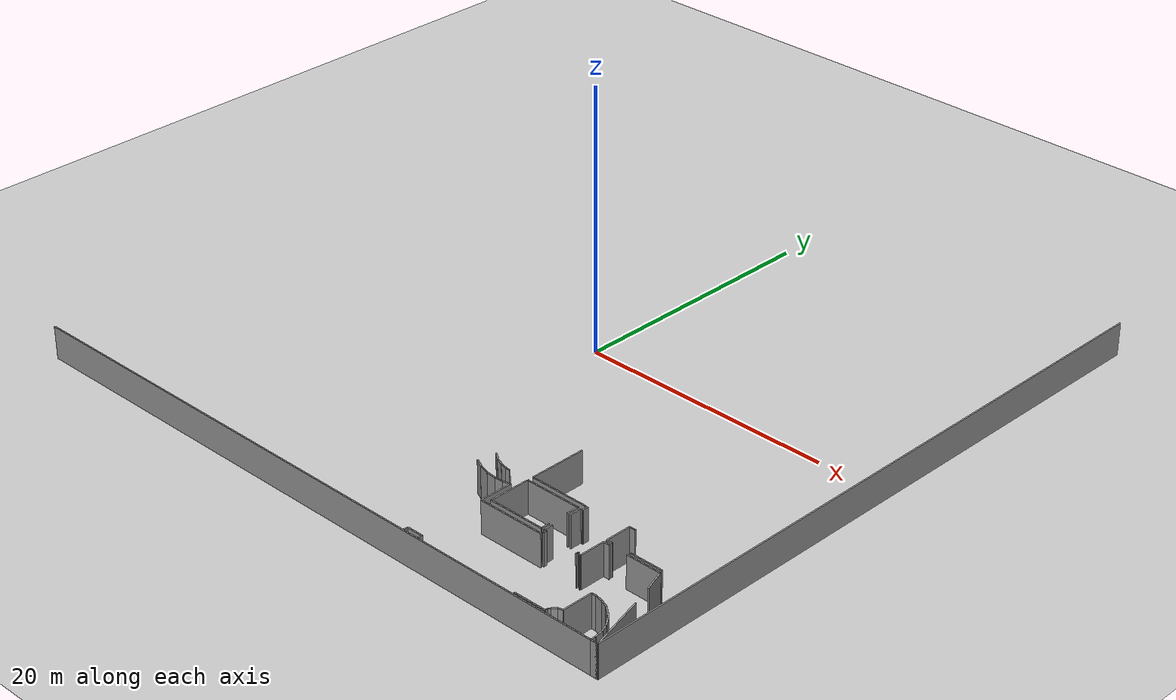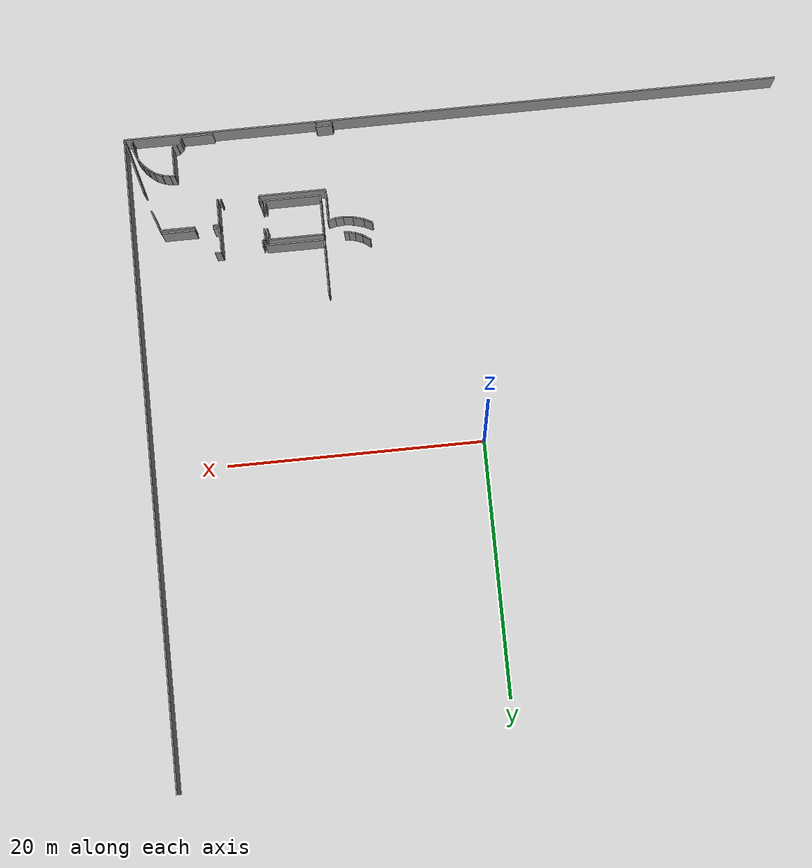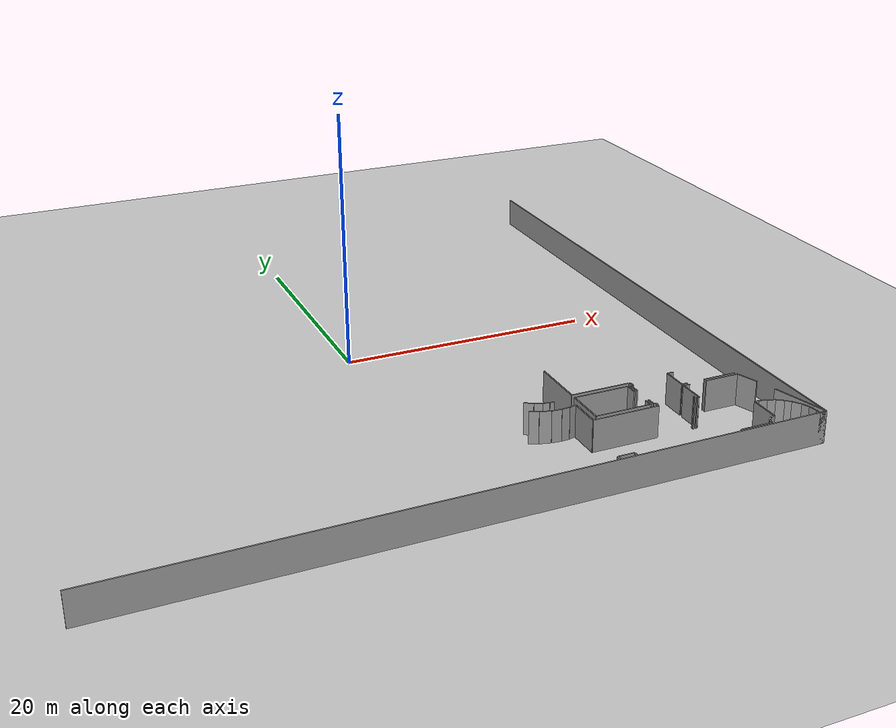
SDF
<sdf version="1.6">
 <world name="default">
  <model name="ground_plane">
   <static>1</static>
   <link name="link">
    <collision name="collision">
     <geometry><plane><normal>0 0 1</normal><size>100 100</size></plane></geometry>
     <surface><friction><ode><mu>100</mu><mu2>50</mu2></ode></friction></surface>
    </collision>
    <visual name="visual">
     <cast_shadows>0</cast_shadows>
     <geometry><plane><normal>0 0 1</normal><size>100 100</size></plane></geometry>
     <material>
      <script><uri>file://media/materials/scripts/gazebo.material</uri><name>Gazebo/Grey</name></script>
     </material>
    </visual>
   </link>
  </model>
  <model name="50041194">
   <static>1</static>
   <link name="Wall_52">
    <collision name="Wall_52_Collision">
     <geometry><box><size>0.710754724174 0.1 2.5</size></box></geometry>
     <pose>0.355377362087 0 1.25 0 0 0</pose>
    </collision>
    <visual name="Wall_52_Visual">
     <pose>0.355377362087 0 1.25 0 0 0</pose>
     <geometry><box><size>0.710754724174 0.1 2.5</size></box></geometry>
     <material>
      <script><uri>file://media/materials/scripts/gazebo.material</uri><name>Gazebo/Grey</name></script>
      <ambient>1 1 1 1</ambient>
     </material>
    </visual>
    <pose>41.0639081979 -44.9492572213 0 0 0 1.57079632679</pose>
   </link>
   <link name="Wall_53">
    <collision name="Wall_53_Collision">
     <geometry><box><size>0.893240650138 0.1 2.5</size></box></geometry>
     <pose>0.446620325069 0 1.25 0 0 0</pose>
    </collision>
    <visual name="Wall_53_Visual">
     <pose>0.446620325069 0 1.25 0 0 0</pose>
     <geometry><box><size>0.893240650138 0.1 2.5</size></box></geometry>
     <material>
      <script><uri>file://media/materials/scripts/gazebo.material</uri><name>Gazebo/Grey</name></script>
      <ambient>1 1 1 1</ambient>
     </material>
    </visual>
    <pose>41.0639081979 -42.6918199032 0 0 0 1.57079632679</pose>
   </link>
   <link name="Wall_54">
    <collision name="Wall_54_Collision">
     <geometry><box><size>0.176513197189 0.1 2.5</size></box></geometry>
     <pose>0.0882565985945 0 1.25 0 0 0</pose>
    </collision>
    <visual name="Wall_54_Visual">
     <pose>0.0882565985945 0 1.25 0 0 0</pose>
     <geometry><box><size>0.176513197189 0.1 2.5</size></box></geometry>
     <material>
      <script><uri>file://media/materials/scripts/gazebo.material</uri><name>Gazebo/Grey</name></script>
      <ambient>1 1 1 1</ambient>
     </material>
    </visual>
    <pose>41.0639081979 -41.798579253 0 0 0 0.0</pose>
   </link>
   <link name="Wall_55">
    <collision name="Wall_55_Collision">
     <geometry><box><size>0.45036916547 0.1 2.5</size></box></geometry>
     <pose>0.225184582735 0 1.25 0 0 0</pose>
    </collision>
    <visual name="Wall_55_Visual">
     <pose>0.225184582735 0 1.25 0 0 0</pose>
     <geometry><box><size>0.45036916547 0.1 2.5</size></box></geometry>
     <material>
      <script><uri>file://media/materials/scripts/gazebo.material</uri><name>Gazebo/Grey</name></script>
      <ambient>1 1 1 1</ambient>
     </material>
    </visual>
    <pose>41.2404213951 -41.798579253 0 0 0 1.57079632679</pose>
   </link>
   <link name="Wall_57">
    <collision name="Wall_57_Collision">
     <geometry><box><size>0.0900992489611 0.1 2.5</size></box></geometry>
     <pose>0.0450496244806 0 1.25 0 0 0</pose>
    </collision>
    <visual name="Wall_57_Visual">
     <pose>0.0450496244806 0 1.25 0 0 0</pose>
     <geometry><box><size>0.0900992489611 0.1 2.5</size></box></geometry>
     <material>
      <script><uri>file://media/materials/scripts/gazebo.material</uri><name>Gazebo/Grey</name></script>
      <ambient>1 1 1 1</ambient>
     </material>
    </visual>
    <pose>44.263384631 -45.1992222745 0 0 0 3.14159265359</pose>
   </link>
   <link name="Wall_58">
    <collision name="Wall_58_Collision">
     <geometry><box><size>0.251617084546 0.1 2.5</size></box></geometry>
     <pose>0.125808542273 0 1.25 0 0 0</pose>
    </collision>
    <visual name="Wall_58_Visual">
     <pose>0.125808542273 0 1.25 0 0 0</pose>
     <geometry><box><size>0.251617084546 0.1 2.5</size></box></geometry>
     <material>
      <script><uri>file://media/materials/scripts/gazebo.material</uri><name>Gazebo/Grey</name></script>
      <ambient>1 1 1 1</ambient>
     </material>
    </visual>
    <pose>41.2537647253 -45.1992222745 0 0 0 1.57079632679</pose>
   </link>
   <link name="Wall_59">
    <collision name="Wall_59_Collision">
     <geometry><box><size>0.189863714847 0.1 2.5</size></box></geometry>
     <pose>0.0949318574234 0 1.25 0 0 0</pose>
    </collision>
    <visual name="Wall_59_Visual">
     <pose>0.0949318574234 0 1.25 0 0 0</pose>
     <geometry><box><size>0.189863714847 0.1 2.5</size></box></geometry>
     <material>
      <script><uri>file://media/materials/scripts/gazebo.material</uri><name>Gazebo/Grey</name></script>
      <ambient>1 1 1 1</ambient>
     </material>
    </visual>
    <pose>41.2537647253 -44.9476051899 0 0 0 -3.13289140064</pose>
   </link>
   <link name="Wall_60">
    <collision name="Wall_60_Collision">
     <geometry><box><size>0.0988677231196 0.1 2.5</size></box></geometry>
     <pose>0.0494338615598 0 1.25 0 0 0</pose>
    </collision>
    <visual name="Wall_60_Visual">
     <pose>0.0494338615598 0 1.25 0 0 0</pose>
     <geometry><box><size>0.0988677231196 0.1 2.5</size></box></geometry>
     <material>
      <script><uri>file://media/materials/scripts/gazebo.material</uri><name>Gazebo/Grey</name></script>
      <ambient>1 1 1 1</ambient>
     </material>
    </visual>
    <pose>44.4213442452 -45.3412969717 0 0 0 0.0</pose>
   </link>
   <link name="Wall_61">
    <collision name="Wall_61_Collision">
     <geometry><box><size>1.99260398267 0.1 2.5</size></box></geometry>
     <pose>0.996301991333 0 1.25 0 0 0</pose>
    </collision>
    <visual name="Wall_61_Visual">
     <pose>0.996301991333 0 1.25 0 0 0</pose>
     <geometry><box><size>1.99260398267 0.1 2.5</size></box></geometry>
     <material>
      <script><uri>file://media/materials/scripts/gazebo.material</uri><name>Gazebo/Grey</name></script>
      <ambient>1 1 1 1</ambient>
     </material>
    </visual>
    <pose>44.5202119683 -45.3412969717 0 0 0 1.57079632679</pose>
   </link>
   <link name="Wall_62">
    <collision name="Wall_62_Collision">
     <geometry><box><size>0.498150995667 0.1 2.5</size></box></geometry>
     <pose>0.249075497833 0 1.25 0 0 0</pose>
    </collision>
    <visual name="Wall_62_Visual">
     <pose>0.249075497833 0 1.25 0 0 0</pose>
     <geometry><box><size>0.498150995667 0.1 2.5</size></box></geometry>
     <material>
      <script><uri>file://media/materials/scripts/gazebo.material</uri><name>Gazebo/Grey</name></script>
      <ambient>1 1 1 1</ambient>
     </material>
    </visual>
    <pose>44.5202119683 -43.348692989 0 0 0 0.0</pose>
   </link>
   <link name="Wall_63">
    <collision name="Wall_63_Collision">
     <geometry><box><size>2.70412118285 0.1 2.5</size></box></geometry>
     <pose>1.35206059143 0 1.25 0 0 0</pose>
    </collision>
    <visual name="Wall_63_Visual">
     <pose>1.35206059143 0 1.25 0 0 0</pose>
     <geometry><box><size>2.70412118285 0.1 2.5</size></box></geometry>
     <material>
      <script><uri>file://media/materials/scripts/gazebo.material</uri><name>Gazebo/Grey</name></script>
      <ambient>1 1 1 1</ambient>
     </material>
    </visual>
    <pose>46.4199209567 -43.348692989 0 0 0 0.0</pose>
   </link>
   <link name="Wall_64">
    <collision name="Wall_64_Collision">
     <geometry><box><size>1.71216550646 0.1 2.5</size></box></geometry>
     <pose>0.856082753228 0 1.25 0 0 0</pose>
    </collision>
    <visual name="Wall_64_Visual">
     <pose>0.856082753228 0 1.25 0 0 0</pose>
     <geometry><box><size>1.71216550646 0.1 2.5</size></box></geometry>
     <material>
      <script><uri>file://media/materials/scripts/gazebo.material</uri><name>Gazebo/Grey</name></script>
      <ambient>1 1 1 1</ambient>
     </material>
    </visual>
    <pose>49.1240421395 -43.348692989 0 0 0 -1.23371869404</pose>
   </link>
   <link name="Wall_65">
    <collision name="Wall_65_Collision">
     <geometry><box><size>4.51648503883 0.1 2.5</size></box></geometry>
     <pose>2.25824251942 0 1.25 0 0 0</pose>
    </collision>
    <visual name="Wall_65_Visual">
     <pose>2.25824251942 0 1.25 0 0 0</pose>
     <geometry><box><size>4.51648503883 0.1 2.5</size></box></geometry>
     <material>
      <script><uri>file://media/materials/scripts/gazebo.material</uri><name>Gazebo/Grey</name></script>
      <ambient>1 1 1 1</ambient>
     </material>
    </visual>
    <pose>50.1624073909 -46.5172891436 0 0 0 -1.30429256626</pose>
   </link>
   <link name="Wall_66">
    <collision name="Wall_66_Collision">
     <geometry><box><size>0.57452567638 0.1 2.5</size></box></geometry>
     <pose>0.28726283819 0 1.25 0 0 0</pose>
    </collision>
    <visual name="Wall_66_Visual">
     <pose>0.28726283819 0 1.25 0 0 0</pose>
     <geometry><box><size>0.57452567638 0.1 2.5</size></box></geometry>
     <material>
      <script><uri>file://media/materials/scripts/gazebo.material</uri><name>Gazebo/Grey</name></script>
      <ambient>1 1 1 1</ambient>
     </material>
    </visual>
    <pose>51.3518699724 -50.874331245 0 0 0 3.14159265359</pose>
   </link>
   <link name="Wall_67">
    <collision name="Wall_67_Collision">
     <geometry><box><size>0.367386359304 0.1 2.5</size></box></geometry>
     <pose>0.183693179652 0 1.25 0 0 0</pose>
    </collision>
    <visual name="Wall_67_Visual">
     <pose>0.183693179652 0 1.25 0 0 0</pose>
     <geometry><box><size>0.367386359304 0.1 2.5</size></box></geometry>
     <material>
      <script><uri>file://media/materials/scripts/gazebo.material</uri><name>Gazebo/Grey</name></script>
      <ambient>1 1 1 1</ambient>
     </material>
    </visual>
    <pose>50.777344296 -50.874331245 0 0 0 1.57079632679</pose>
   </link>
   <link name="Wall_68">
    <collision name="Wall_68_Collision">
     <geometry><box><size>0.661719562512 0.1 2.5</size></box></geometry>
     <pose>0.330859781256 0 1.25 0 0 0</pose>
    </collision>
    <visual name="Wall_68_Visual">
     <pose>0.330859781256 0 1.25 0 0 0</pose>
     <geometry><box><size>0.661719562512 0.1 2.5</size></box></geometry>
     <material>
      <script><uri>file://media/materials/scripts/gazebo.material</uri><name>Gazebo/Grey</name></script>
      <ambient>1 1 1 1</ambient>
     </material>
    </visual>
    <pose>50.777344296 -50.5069448857 0 0 0 1.71377974708</pose>
   </link>
   <link name="Wall_69">
    <collision name="Wall_69_Collision">
     <geometry><box><size>0.605030268786 0.1 2.5</size></box></geometry>
     <pose>0.302515134393 0 1.25 0 0 0</pose>
    </collision>
    <visual name="Wall_69_Visual">
     <pose>0.302515134393 0 1.25 0 0 0</pose>
     <geometry><box><size>0.605030268786 0.1 2.5</size></box></geometry>
     <material>
      <script><uri>file://media/materials/scripts/gazebo.material</uri><name>Gazebo/Grey</name></script>
      <ambient>1 1 1 1</ambient>
     </material>
    </visual>
    <pose>50.683051429 -49.8519779899 0 0 0 1.94244889049</pose>
   </link>
   <link name="Wall_70">
    <collision name="Wall_70_Collision">
     <geometry><box><size>0.732314725566 0.1 2.5</size></box></geometry>
     <pose>0.366157362783 0 1.25 0 0 0</pose>
    </collision>
    <visual name="Wall_70_Visual">
     <pose>0.366157362783 0 1.25 0 0 0</pose>
     <geometry><box><size>0.732314725566 0.1 2.5</size></box></geometry>
     <material>
      <script><uri>file://media/materials/scripts/gazebo.material</uri><name>Gazebo/Grey</name></script>
      <ambient>1 1 1 1</ambient>
     </material>
    </visual>
    <pose>50.4633312577 -49.288254057 0 0 0 2.18392483411</pose>
   </link>
   <link name="Wall_71">
    <collision name="Wall_71_Collision">
     <geometry><box><size>0.485521715179 0.1 2.5</size></box></geometry>
     <pose>0.24276085759 0 1.25 0 0 0</pose>
    </collision>
    <visual name="Wall_71_Visual">
     <pose>0.24276085759 0 1.25 0 0 0</pose>
     <geometry><box><size>0.485521715179 0.1 2.5</size></box></geometry>
     <material>
      <script><uri>file://media/materials/scripts/gazebo.material</uri><name>Gazebo/Grey</name></script>
      <ambient>1 1 1 1</ambient>
     </material>
    </visual>
    <pose>50.0419361808 -48.6893291482 0 0 0 2.36415286372</pose>
   </link>
   <link name="Wall_72">
    <collision name="Wall_72_Collision">
     <geometry><box><size>0.635157215555 0.1 2.5</size></box></geometry>
     <pose>0.317578607777 0 1.25 0 0 0</pose>
    </collision>
    <visual name="Wall_72_Visual">
     <pose>0.317578607777 0 1.25 0 0 0</pose>
     <geometry><box><size>0.635157215555 0.1 2.5</size></box></geometry>
     <material>
      <script><uri>file://media/materials/scripts/gazebo.material</uri><name>Gazebo/Grey</name></script>
      <ambient>1 1 1 1</ambient>
     </material>
    </visual>
    <pose>49.6958991498 -48.3487565287 0 0 0 2.49128892864</pose>
   </link>
   <link name="Wall_73">
    <collision name="Wall_73_Collision">
     <geometry><box><size>0.604016370553 0.1 2.5</size></box></geometry>
     <pose>0.302008185276 0 1.25 0 0 0</pose>
    </collision>
    <visual name="Wall_73_Visual">
     <pose>0.302008185276 0 1.25 0 0 0</pose>
     <geometry><box><size>0.604016370553 0.1 2.5</size></box></geometry>
     <material>
      <script><uri>file://media/materials/scripts/gazebo.material</uri><name>Gazebo/Grey</name></script>
      <ambient>1 1 1 1</ambient>
     </material>
    </visual>
    <pose>49.1903775527 -47.9642144591 0 0 0 2.75932819109</pose>
   </link>
   <link name="Wall_74">
    <collision name="Wall_74_Collision">
     <geometry><box><size>0.618465164093 0.1 2.5</size></box></geometry>
     <pose>0.309232582047 0 1.25 0 0 0</pose>
    </collision>
    <visual name="Wall_74_Visual">
     <pose>0.309232582047 0 1.25 0 0 0</pose>
     <geometry><box><size>0.618465164093 0.1 2.5</size></box></geometry>
     <material>
      <script><uri>file://media/materials/scripts/gazebo.material</uri><name>Gazebo/Grey</name></script>
      <ambient>1 1 1 1</ambient>
     </material>
    </visual>
    <pose>48.6299576826 -47.738902797 0 0 0 2.92686850439</pose>
   </link>
   <link name="Wall_75">
    <collision name="Wall_75_Collision">
     <geometry><box><size>0.361921947872 0.1 2.5</size></box></geometry>
     <pose>0.180960973936 0 1.25 0 0 0</pose>
    </collision>
    <visual name="Wall_75_Visual">
     <pose>0.180960973936 0 1.25 0 0 0</pose>
     <geometry><box><size>0.361921947872 0.1 2.5</size></box></geometry>
     <material>
      <script><uri>file://media/materials/scripts/gazebo.material</uri><name>Gazebo/Grey</name></script>
      <ambient>1 1 1 1</ambient>
     </material>
    </visual>
    <pose>48.0256954417 -47.607121526 0 0 0 3.14159265359</pose>
   </link>
   <link name="Wall_76">
    <collision name="Wall_76_Collision">
     <geometry><box><size>2.33660774421 0.1 2.5</size></box></geometry>
     <pose>1.16830387211 0 1.25 0 0 0</pose>
    </collision>
    <visual name="Wall_76_Visual">
     <pose>1.16830387211 0 1.25 0 0 0</pose>
     <geometry><box><size>2.33660774421 0.1 2.5</size></box></geometry>
     <material>
      <script><uri>file://media/materials/scripts/gazebo.material</uri><name>Gazebo/Grey</name></script>
      <ambient>1 1 1 1</ambient>
     </material>
    </visual>
    <pose>47.6637734938 -47.607121526 0 0 0 -1.57079632679</pose>
   </link>
   <link name="Wall_77">
    <collision name="Wall_77_Collision">
     <geometry><box><size>0.377409046238 0.1 2.5</size></box></geometry>
     <pose>0.188704523119 0 1.25 0 0 0</pose>
    </collision>
    <visual name="Wall_77_Visual">
     <pose>0.188704523119 0 1.25 0 0 0</pose>
     <geometry><box><size>0.377409046238 0.1 2.5</size></box></geometry>
     <material>
      <script><uri>file://media/materials/scripts/gazebo.material</uri><name>Gazebo/Grey</name></script>
      <ambient>1 1 1 1</ambient>
     </material>
    </visual>
    <pose>47.6637734938 -49.9437292702 0 0 0 -2.91507142206</pose>
   </link>
   <link name="Wall_78">
    <collision name="Wall_78_Collision">
     <geometry><box><size>0.399781188315 0.1 2.5</size></box></geometry>
     <pose>0.199890594157 0 1.25 0 0 0</pose>
    </collision>
    <visual name="Wall_78_Visual">
     <pose>0.199890594157 0 1.25 0 0 0</pose>
     <geometry><box><size>0.399781188315 0.1 2.5</size></box></geometry>
     <material>
      <script><uri>file://media/materials/scripts/gazebo.material</uri><name>Gazebo/Grey</name></script>
      <ambient>1 1 1 1</ambient>
     </material>
    </visual>
    <pose>47.2960058965 -50.028491187 0 0 0 -2.35596972058</pose>
   </link>
   <link name="Wall_79">
    <collision name="Wall_79_Collision">
     <geometry><box><size>0.216576073905 0.1 2.5</size></box></geometry>
     <pose>0.108288036953 0 1.25 0 0 0</pose>
    </collision>
    <visual name="Wall_79_Visual">
     <pose>0.108288036953 0 1.25 0 0 0</pose>
     <geometry><box><size>0.216576073905 0.1 2.5</size></box></geometry>
     <material>
      <script><uri>file://media/materials/scripts/gazebo.material</uri><name>Gazebo/Grey</name></script>
      <ambient>1 1 1 1</ambient>
     </material>
    </visual>
    <pose>47.013381454 -50.3112427088 0 0 0 -1.98955684935</pose>
   </link>
   <link name="Wall_80">
    <collision name="Wall_80_Collision">
     <geometry><box><size>0.172827896456 0.1 2.5</size></box></geometry>
     <pose>0.0864139482279 0 1.25 0 0 0</pose>
    </collision>
    <visual name="Wall_80_Visual">
     <pose>0.0864139482279 0 1.25 0 0 0</pose>
     <geometry><box><size>0.172827896456 0.1 2.5</size></box></geometry>
     <material>
      <script><uri>file://media/materials/scripts/gazebo.material</uri><name>Gazebo/Grey</name></script>
      <ambient>1 1 1 1</ambient>
     </material>
    </visual>
    <pose>46.9253154745 -50.5091052344 0 0 0 -1.57079632679</pose>
   </link>
   <link name="Wall_81">
    <collision name="Wall_81_Collision">
     <geometry><box><size>2.5040224242 0.1 2.5</size></box></geometry>
     <pose>1.2520112121 0 1.25 0 0 0</pose>
    </collision>
    <visual name="Wall_81_Visual">
     <pose>1.2520112121 0 1.25 0 0 0</pose>
     <geometry><box><size>2.5040224242 0.1 2.5</size></box></geometry>
     <material>
      <script><uri>file://media/materials/scripts/gazebo.material</uri><name>Gazebo/Grey</name></script>
      <ambient>1 1 1 1</ambient>
     </material>
    </visual>
    <pose>46.9253154745 -50.6819331309 0 0 0 -3.13519810007</pose>
   </link>
   <link name="Wall_95">
    <collision name="Wall_95_Collision">
     <geometry><box><size>0.728984336809 0.1 2.5</size></box></geometry>
     <pose>0.364492168404 0 1.25 0 0 0</pose>
    </collision>
    <visual name="Wall_95_Visual">
     <pose>0.364492168404 0 1.25 0 0 0</pose>
     <geometry><box><size>0.728984336809 0.1 2.5</size></box></geometry>
     <material>
      <script><uri>file://media/materials/scripts/gazebo.material</uri><name>Gazebo/Grey</name></script>
      <ambient>1 1 1 1</ambient>
     </material>
    </visual>
    <pose>32.6098283158 -42.36916547 0 0 0 -0.467467657465</pose>
   </link>
   <link name="Wall_96">
    <collision name="Wall_96_Collision">
     <geometry><box><size>0.872923422645 0.1 2.5</size></box></geometry>
     <pose>0.436461711323 0 1.25 0 0 0</pose>
    </collision>
    <visual name="Wall_96_Visual">
     <pose>0.436461711323 0 1.25 0 0 0</pose>
     <geometry><box><size>0.872923422645 0.1 2.5</size></box></geometry>
     <material>
      <script><uri>file://media/materials/scripts/gazebo.material</uri><name>Gazebo/Grey</name></script>
      <ambient>1 1 1 1</ambient>
     </material>
    </visual>
    <pose>33.2606015936 -42.6976655526 0 0 0 -0.284498711719</pose>
   </link>
   <link name="Wall_97">
    <collision name="Wall_97_Collision">
     <geometry><box><size>0.756607291636 0.1 2.5</size></box></geometry>
     <pose>0.378303645818 0 1.25 0 0 0</pose>
    </collision>
    <visual name="Wall_97_Visual">
     <pose>0.378303645818 0 1.25 0 0 0</pose>
     <geometry><box><size>0.756607291636 0.1 2.5</size></box></geometry>
     <material>
      <script><uri>file://media/materials/scripts/gazebo.material</uri><name>Gazebo/Grey</name></script>
      <ambient>1 1 1 1</ambient>
     </material>
    </visual>
    <pose>34.0984356534 -42.9426745117 0 0 0 -0.101791152855</pose>
   </link>
   <link name="Wall_98">
    <collision name="Wall_98_Collision">
     <geometry><box><size>0.627421811993 0.1 2.5</size></box></geometry>
     <pose>0.313710905997 0 1.25 0 0 0</pose>
    </collision>
    <visual name="Wall_98_Visual">
     <pose>0.313710905997 0 1.25 0 0 0</pose>
     <geometry><box><size>0.627421811993 0.1 2.5</size></box></geometry>
     <material>
      <script><uri>file://media/materials/scripts/gazebo.material</uri><name>Gazebo/Grey</name></script>
      <ambient>1 1 1 1</ambient>
     </material>
    </visual>
    <pose>34.8511265583 -43.0195575098 0 0 0 0.0612059236671</pose>
   </link>
   <link name="Wall_99">
    <collision name="Wall_99_Collision">
     <geometry><box><size>0.582319753917 0.1 2.5</size></box></geometry>
     <pose>0.291159876959 0 1.25 0 0 0</pose>
    </collision>
    <visual name="Wall_99_Visual">
     <pose>0.291159876959 0 1.25 0 0 0</pose>
     <geometry><box><size>0.582319753917 0.1 2.5</size></box></geometry>
     <material>
      <script><uri>file://media/materials/scripts/gazebo.material</uri><name>Gazebo/Grey</name></script>
      <ambient>1 1 1 1</ambient>
     </material>
    </visual>
    <pose>35.4773735243 -42.9811795504 0 0 0 0.238150843544</pose>
   </link>
   <link name="Wall_100">
    <collision name="Wall_100_Collision">
     <geometry><box><size>2.50981687868 0.1 2.5</size></box></geometry>
     <pose>1.25490843934 0 1.25 0 0 0</pose>
    </collision>
    <visual name="Wall_100_Visual">
     <pose>1.25490843934 0 1.25 0 0 0</pose>
     <geometry><box><size>2.50981687868 0.1 2.5</size></box></geometry>
     <material>
      <script><uri>file://media/materials/scripts/gazebo.material</uri><name>Gazebo/Grey</name></script>
      <ambient>1 1 1 1</ambient>
     </material>
    </visual>
    <pose>36.0432578058 -42.8438067886 0 0 0 -1.57079632679</pose>
   </link>
   <link name="Wall_101">
    <collision name="Wall_101_Collision">
     <geometry><box><size>5.19970517594 0.1 2.5</size></box></geometry>
     <pose>2.59985258797 0 1.25 0 0 0</pose>
    </collision>
    <visual name="Wall_101_Visual">
     <pose>2.59985258797 0 1.25 0 0 0</pose>
     <geometry><box><size>5.19970517594 0.1 2.5</size></box></geometry>
     <material>
      <script><uri>file://media/materials/scripts/gazebo.material</uri><name>Gazebo/Grey</name></script>
      <ambient>1 1 1 1</ambient>
     </material>
    </visual>
    <pose>36.0432578058 -45.3536236673 0 0 0 0.0</pose>
   </link>
   <link name="Wall_102">
    <collision name="Wall_102_Collision">
     <geometry><box><size>0.101155151161 0.1 2.5</size></box></geometry>
     <pose>0.0505775755804 0 1.25 0 0 0</pose>
    </collision>
    <visual name="Wall_102_Visual">
     <pose>0.0505775755804 0 1.25 0 0 0</pose>
     <geometry><box><size>0.101155151161 0.1 2.5</size></box></geometry>
     <material>
      <script><uri>file://media/materials/scripts/gazebo.material</uri><name>Gazebo/Grey</name></script>
      <ambient>1 1 1 1</ambient>
     </material>
    </visual>
    <pose>44.169473002 -45.3536236673 0 0 0 0.0</pose>
   </link>
   <link name="Wall_103">
    <collision name="Wall_103_Collision">
     <geometry><box><size>0.2988905974 0.1 2.5</size></box></geometry>
     <pose>0.1494452987 0 1.25 0 0 0</pose>
    </collision>
    <visual name="Wall_103_Visual">
     <pose>0.1494452987 0 1.25 0 0 0</pose>
     <geometry><box><size>0.2988905974 0.1 2.5</size></box></geometry>
     <material>
      <script><uri>file://media/materials/scripts/gazebo.material</uri><name>Gazebo/Grey</name></script>
      <ambient>1 1 1 1</ambient>
     </material>
    </visual>
    <pose>36.3000851432 -50.7787675846 0 0 0 1.57079632679</pose>
   </link>
   <link name="Wall_104">
    <collision name="Wall_104_Collision">
     <geometry><box><size>1.25884789874 0.1 2.5</size></box></geometry>
     <pose>0.629423949372 0 1.25 0 0 0</pose>
    </collision>
    <visual name="Wall_104_Visual">
     <pose>0.629423949372 0 1.25 0 0 0</pose>
     <geometry><box><size>1.25884789874 0.1 2.5</size></box></geometry>
     <material>
      <script><uri>file://media/materials/scripts/gazebo.material</uri><name>Gazebo/Grey</name></script>
      <ambient>1 1 1 1</ambient>
     </material>
    </visual>
    <pose>36.3000851432 -50.4798769872 0 0 0 3.14159265359</pose>
   </link>
   <link name="Wall_105">
    <collision name="Wall_105_Collision">
     <geometry><box><size>0.299398914742 0.1 2.5</size></box></geometry>
     <pose>0.149699457371 0 1.25 0 0 0</pose>
    </collision>
    <visual name="Wall_105_Visual">
     <pose>0.149699457371 0 1.25 0 0 0</pose>
     <geometry><box><size>0.299398914742 0.1 2.5</size></box></geometry>
     <material>
      <script><uri>file://media/materials/scripts/gazebo.material</uri><name>Gazebo/Grey</name></script>
      <ambient>1 1 1 1</ambient>
     </material>
    </visual>
    <pose>35.0412372444 -50.4798769872 0 0 0 -1.57079632679</pose>
   </link>
   <link name="Wall_118">
    <collision name="Wall_118_Collision">
     <geometry><box><size>0.338473752888 0.1 2.5</size></box></geometry>
     <pose>0.169236876444 0 1.25 0 0 0</pose>
    </collision>
    <visual name="Wall_118_Visual">
     <pose>0.169236876444 0 1.25 0 0 0</pose>
     <geometry><box><size>0.338473752888 0.1 2.5</size></box></geometry>
     <material>
      <script><uri>file://media/materials/scripts/gazebo.material</uri><name>Gazebo/Grey</name></script>
      <ambient>1 1 1 1</ambient>
     </material>
    </visual>
    <pose>34.8773049014 -41.7938773176 0 0 0 3.09840269299</pose>
   </link>
   <link name="Wall_119">
    <collision name="Wall_119_Collision">
     <geometry><box><size>0.504607863809 0.1 2.5</size></box></geometry>
     <pose>0.252303931904 0 1.25 0 0 0</pose>
    </collision>
    <visual name="Wall_119_Visual">
     <pose>0.252303931904 0 1.25 0 0 0</pose>
     <geometry><box><size>0.504607863809 0.1 2.5</size></box></geometry>
     <material>
      <script><uri>file://media/materials/scripts/gazebo.material</uri><name>Gazebo/Grey</name></script>
      <ambient>1 1 1 1</ambient>
     </material>
    </visual>
    <pose>34.5391467893 -41.779263194 0 0 0 2.9080361313</pose>
   </link>
   <link name="Wall_120">
    <collision name="Wall_120_Collision">
     <geometry><box><size>0.61557243296 0.1 2.5</size></box></geometry>
     <pose>0.30778621648 0 1.25 0 0 0</pose>
    </collision>
    <visual name="Wall_120_Visual">
     <pose>0.30778621648 0 1.25 0 0 0</pose>
     <geometry><box><size>0.61557243296 0.1 2.5</size></box></geometry>
     <material>
      <script><uri>file://media/materials/scripts/gazebo.material</uri><name>Gazebo/Grey</name></script>
      <ambient>1 1 1 1</ambient>
     </material>
    </visual>
    <pose>34.0482393158 -41.6624772846 0 0 0 2.76863836598</pose>
   </link>
   <link name="Wall_121">
    <collision name="Wall_121_Collision">
     <geometry><box><size>0.723061598209 0.1 2.5</size></box></geometry>
     <pose>0.361530799105 0 1.25 0 0 0</pose>
    </collision>
    <visual name="Wall_121_Visual">
     <pose>0.361530799105 0 1.25 0 0 0</pose>
     <geometry><box><size>0.723061598209 0.1 2.5</size></box></geometry>
     <material>
      <script><uri>file://media/materials/scripts/gazebo.material</uri><name>Gazebo/Grey</name></script>
      <ambient>1 1 1 1</ambient>
     </material>
    </visual>
    <pose>33.4749844328 -41.4381822572 0 0 0 2.51531606723</pose>
   </link>
   <link name="Wall_147">
    <collision name="Wall_147_Collision">
     <geometry><box><size>4.34636743719 0.1 2.5</size></box></geometry>
     <pose>2.1731837186 0 1.25 0 0 0</pose>
    </collision>
    <visual name="Wall_147_Visual">
     <pose>2.1731837186 0 1.25 0 0 0</pose>
     <geometry><box><size>4.34636743719 0.1 2.5</size></box></geometry>
     <material>
      <script><uri>file://media/materials/scripts/gazebo.material</uri><name>Gazebo/Grey</name></script>
      <ambient>1 1 1 1</ambient>
     </material>
    </visual>
    <pose>36.4978205894 -41.3615534178 0 0 0 1.57079632679</pose>
   </link>
   <link name="Wall_149">
    <collision name="Wall_149_Collision">
     <geometry><box><size>4.55923087835 0.1 2.5</size></box></geometry>
     <pose>2.27961543918 0 1.25 0 0 0</pose>
    </collision>
    <visual name="Wall_149_Visual">
     <pose>2.27961543918 0 1.25 0 0 0</pose>
     <geometry><box><size>4.55923087835 0.1 2.5</size></box></geometry>
     <material>
      <script><uri>file://media/materials/scripts/gazebo.material</uri><name>Gazebo/Grey</name></script>
      <ambient>1 1 1 1</ambient>
     </material>
    </visual>
    <pose>41.0570459138 -41.3686698606 0 0 0 3.14003176627</pose>
   </link>
   <link name="Wall_150">
    <collision name="Wall_150_Collision">
     <geometry><box><size>3.13720755868 0.1 2.5</size></box></geometry>
     <pose>1.56860377934 0 1.25 0 0 0</pose>
    </collision>
    <visual name="Wall_150_Visual">
     <pose>1.56860377934 0 1.25 0 0 0</pose>
     <geometry><box><size>3.13720755868 0.1 2.5</size></box></geometry>
     <material>
      <script><uri>file://media/materials/scripts/gazebo.material</uri><name>Gazebo/Grey</name></script>
      <ambient>1 1 1 1</ambient>
     </material>
    </visual>
    <pose>36.4910853846 -44.9326098283 0 0 0 1.57079632679</pose>
   </link>
   <link name="Wall_151">
    <collision name="Wall_151_Collision">
     <geometry><box><size>4.33137207559 0.1 2.5</size></box></geometry>
     <pose>2.16568603779 0 1.25 0 0 0</pose>
    </collision>
    <visual name="Wall_151_Visual">
     <pose>2.16568603779 0 1.25 0 0 0</pose>
     <geometry><box><size>4.33137207559 0.1 2.5</size></box></geometry>
     <material>
      <script><uri>file://media/materials/scripts/gazebo.material</uri><name>Gazebo/Grey</name></script>
      <ambient>1 1 1 1</ambient>
     </material>
    </visual>
    <pose>36.4910853846 -41.7954022696 0 0 0 0.0</pose>
   </link>
   <link name="Wall_152">
    <collision name="Wall_152_Collision">
     <geometry><box><size>0.905059028351 0.1 2.5</size></box></geometry>
     <pose>0.452529514176 0 1.25 0 0 0</pose>
    </collision>
    <visual name="Wall_152_Visual">
     <pose>0.452529514176 0 1.25 0 0 0</pose>
     <geometry><box><size>0.905059028351 0.1 2.5</size></box></geometry>
     <material>
      <script><uri>file://media/materials/scripts/gazebo.material</uri><name>Gazebo/Grey</name></script>
      <ambient>1 1 1 1</ambient>
     </material>
    </visual>
    <pose>40.8224574602 -41.7954022696 0 0 0 -1.57079632679</pose>
   </link>
   <link name="Wall_153">
    <collision name="Wall_153_Collision">
     <geometry><box><size>0.662210417964 0.1 2.5</size></box></geometry>
     <pose>0.331105208982 0 1.25 0 0 0</pose>
    </collision>
    <visual name="Wall_153_Visual">
     <pose>0.331105208982 0 1.25 0 0 0</pose>
     <geometry><box><size>0.662210417964 0.1 2.5</size></box></geometry>
     <material>
      <script><uri>file://media/materials/scripts/gazebo.material</uri><name>Gazebo/Grey</name></script>
      <ambient>1 1 1 1</ambient>
     </material>
    </visual>
    <pose>40.8224574602 -44.268747379 0 0 0 -1.57079632679</pose>
   </link>
   <link name="Wall_154">
    <collision name="Wall_154_Collision">
     <geometry><box><size>4.33137239064 0.1 2.5</size></box></geometry>
     <pose>2.16568619532 0 1.25 0 0 0</pose>
    </collision>
    <visual name="Wall_154_Visual">
     <pose>2.16568619532 0 1.25 0 0 0</pose>
     <geometry><box><size>4.33137239064 0.1 2.5</size></box></geometry>
     <material>
      <script><uri>file://media/materials/scripts/gazebo.material</uri><name>Gazebo/Grey</name></script>
      <ambient>1 1 1 1</ambient>
     </material>
    </visual>
    <pose>40.8224574602 -44.930957797 0 0 0 -3.14121124298</pose>
   </link>
   <link name="Wall_155">
    <collision name="Wall_155_Collision">
     <geometry><box><size>1.9852333812 0.1 2.5</size></box></geometry>
     <pose>0.9926166906 0 1.25 0 0 0</pose>
    </collision>
    <visual name="Wall_155_Visual">
     <pose>0.9926166906 0 1.25 0 0 0</pose>
     <geometry><box><size>1.9852333812 0.1 2.5</size></box></geometry>
     <material>
      <script><uri>file://media/materials/scripts/gazebo.material</uri><name>Gazebo/Grey</name></script>
      <ambient>1 1 1 1</ambient>
     </material>
    </visual>
    <pose>44.5252951418 -43.1123254248 0 0 0 1.57079632679</pose>
   </link>
   <link name="Wall_156">
    <collision name="Wall_156_Collision">
     <geometry><box><size>0.493067822241 0.1 2.5</size></box></geometry>
     <pose>0.246533911121 0 1.25 0 0 0</pose>
    </collision>
    <visual name="Wall_156_Visual">
     <pose>0.246533911121 0 1.25 0 0 0</pose>
     <geometry><box><size>0.493067822241 0.1 2.5</size></box></geometry>
     <material>
      <script><uri>file://media/materials/scripts/gazebo.material</uri><name>Gazebo/Grey</name></script>
      <ambient>1 1 1 1</ambient>
     </material>
    </visual>
    <pose>44.5252951418 -41.1270920436 0 0 0 0.0</pose>
   </link>
   <link name="Wall_159">
    <collision name="Wall_159_Collision">
     <geometry><box><size>2.6236799634 0.1 2.5</size></box></geometry>
     <pose>1.3118399817 0 1.25 0 0 0</pose>
    </collision>
    <visual name="Wall_159_Visual">
     <pose>1.3118399817 0 1.25 0 0 0</pose>
     <geometry><box><size>2.6236799634 0.1 2.5</size></box></geometry>
     <material>
      <script><uri>file://media/materials/scripts/gazebo.material</uri><name>Gazebo/Grey</name></script>
      <ambient>1 1 1 1</ambient>
     </material>
    </visual>
    <pose>49.0314013038 -43.0905948584 0 0 0 3.14159265359</pose>
   </link>
   <link name="Wall_160">
    <collision name="Wall_160_Collision">
     <geometry><box><size>0.469933764553 0.1 2.5</size></box></geometry>
     <pose>0.234966882277 0 1.25 0 0 0</pose>
    </collision>
    <visual name="Wall_160_Visual">
     <pose>0.234966882277 0 1.25 0 0 0</pose>
     <geometry><box><size>0.469933764553 0.1 2.5</size></box></geometry>
     <material>
      <script><uri>file://media/materials/scripts/gazebo.material</uri><name>Gazebo/Grey</name></script>
      <ambient>1 1 1 1</ambient>
     </material>
    </visual>
    <pose>44.9947262076 -43.0905948584 0 0 0 -3.09533439358</pose>
   </link>
   <link name="Wall_168">
    <collision name="Wall_168_Collision">
     <geometry><box><size>50.874331245 0.1 2.5</size></box></geometry>
     <pose>25.4371656225 0 1.25 0 0 0</pose>
    </collision>
    <visual name="Wall_168_Visual">
     <pose>25.4371656225 0 1.25 0 0 0</pose>
     <geometry><box><size>50.874331245 0.1 2.5</size></box></geometry>
     <material>
      <script><uri>file://media/materials/scripts/gazebo.material</uri><name>Gazebo/Grey</name></script>
      <ambient>1 1 1 1</ambient>
     </material>
    </visual>
    <pose>51.3518699724 -50.874331245 0 0 0 1.57079632679</pose>
   </link>
   <link name="Wall_169">
    <collision name="Wall_169_Collision">
     <geometry><box><size>51.3518699724 0.1 2.5</size></box></geometry>
     <pose>25.6759349862 0 1.25 0 0 0</pose>
    </collision>
    <visual name="Wall_169_Visual">
     <pose>25.6759349862 0 1.25 0 0 0</pose>
     <geometry><box><size>51.3518699724 0.1 2.5</size></box></geometry>
     <material>
      <script><uri>file://media/materials/scripts/gazebo.material</uri><name>Gazebo/Grey</name></script>
      <ambient>1 1 1 1</ambient>
     </material>
    </visual>
    <pose>51.3518699724 -50.874331245 0 0 0 3.14159265359</pose>
   </link>
   <pose>-25.65 24.674331245 0 0 0 0</pose>
  </model>
 </world>
</sdf>
